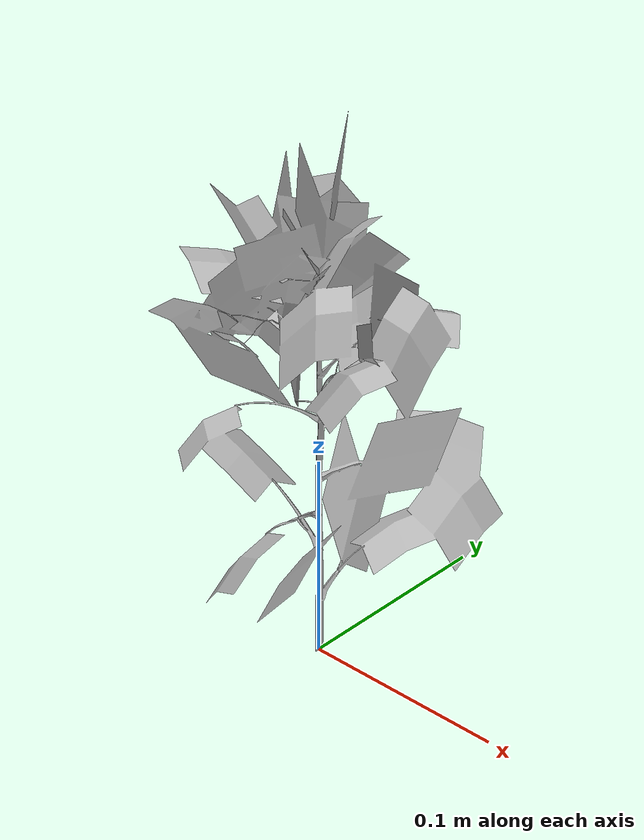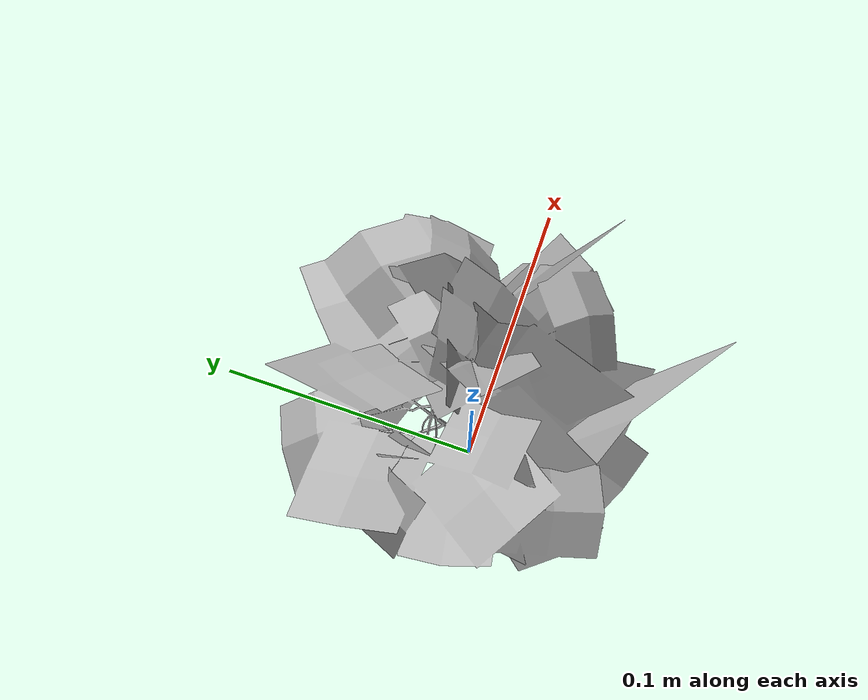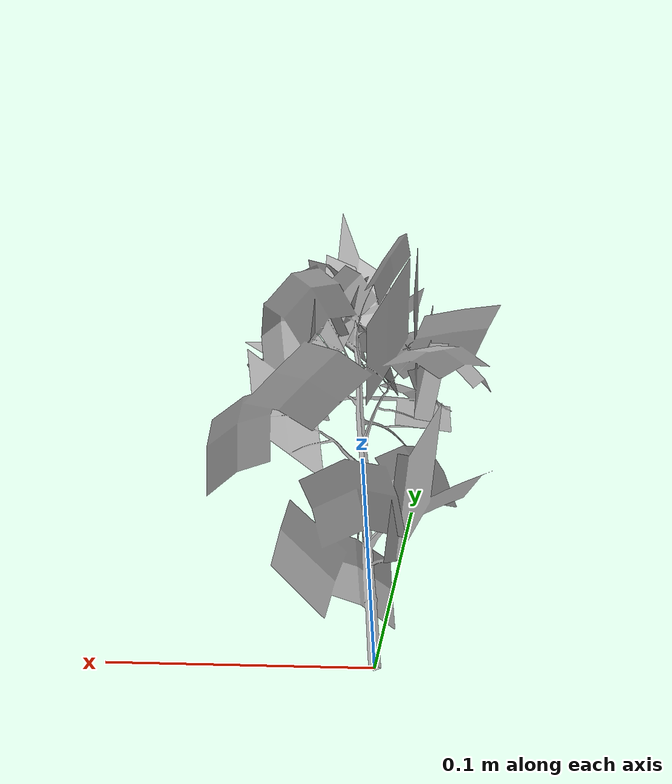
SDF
<?xml version="1.0" ?>
<sdf version="1.5">
  <model name="Oak tree">
     <static>true</static>
    <pose frame=''>0 0 0 1.57079 0 0</pose>
    <link name="link">
      <pose frame=''>0 0 0 0 0 0</pose>
      <collision name="collision">
        <geometry>
          <mesh>
            <scale>1 1 1</scale>
            <uri>model://tree_6/meshes/tree.obj</uri>
          </mesh>
        </geometry>
      </collision>
      <visual name="visual">
        <geometry>
          <mesh>

            <scale>1 1 1</scale>
            <uri>model://tree_6/meshes/tree.obj</uri>
          </mesh>
        </geometry>
      </visual>
    </link>
  </model>
</sdf>
